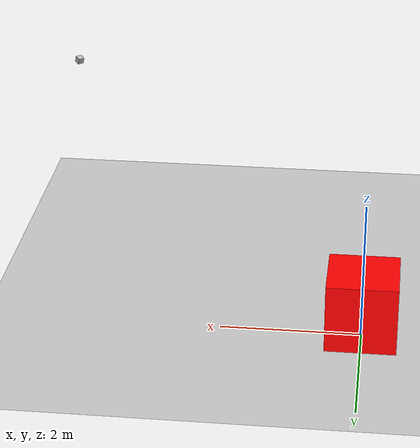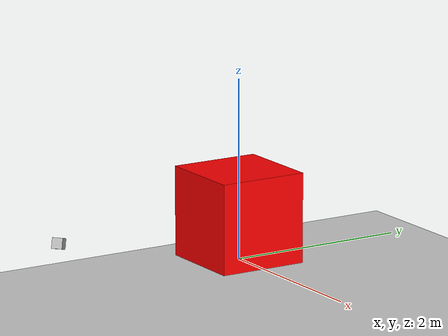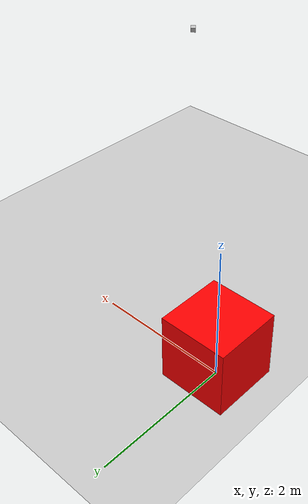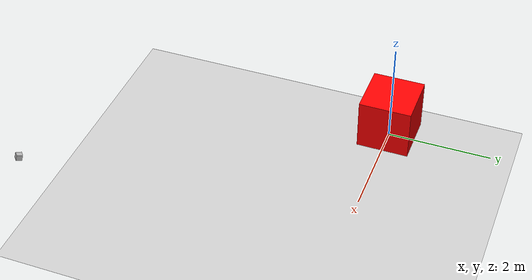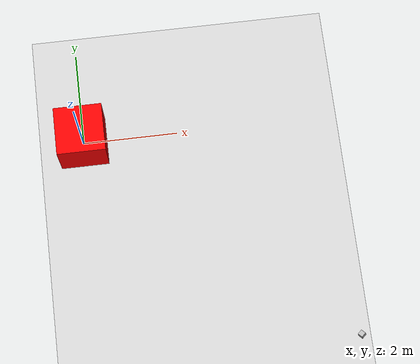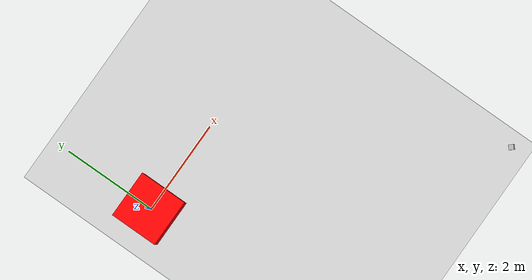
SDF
<?xml version="1.0" ?>
<sdf version="1.8">
  <world name="empty">
    <physics name="1ms" type="ignored">
      <max_step_size>0.001</max_step_size>
      <real_time_factor>1.0</real_time_factor>
    </physics>
    <plugin filename="gz-sim-physics-system"
        name="gz::sim::systems::Physics">
    </plugin>
    <plugin filename="gz-sim-user-commands-system"
        name="gz::sim::systems::UserCommands">
    </plugin>
    <plugin filename="gz-sim-scene-broadcaster-system"
        name="gz::sim::systems::SceneBroadcaster">
    </plugin>

    <light type="directional" name="sun">
      <cast_shadows>true</cast_shadows>
      <pose>0 0 10 0 0 0</pose>
      <diffuse>0.8 0.8 0.8 1</diffuse>
      <specular>0.2 0.2 0.2 1</specular>
      <attenuation>
        <range>1000</range>
        <constant>0.9</constant>
        <linear>0.01</linear>
        <quadratic>0.001</quadratic>
      </attenuation>
      <direction>-0.5 0.1 -0.9</direction>
    </light>

    <model name="ground_plane">
      <static>true</static>
      <link name="link">
        <collision name="collision">
          <geometry>
            <plane>
              <normal>0 0 1</normal>
              <size>100 100</size>
            </plane>
          </geometry>
        </collision>
        <visual name="visual">
          <geometry>
            <plane>
              <normal>0 0 1</normal>
              <size>100 100</size>
            </plane>
          </geometry>
          <material>
            <ambient>0.8 0.8 0.8 1</ambient>
            <diffuse>0.8 0.8 0.8 1</diffuse>
            <specular>0.8 0.8 0.8 1</specular>
          </material>
        </visual>
      </link>
    </model>

    <!-- Add a simple box to visualize -->
    <model name="box">
      <pose>0 0 0.5 0 0 0</pose>
      <link name="box_link">
        <inertial>
          <mass>1.0</mass>
          <inertia>
            <ixx>0.166666</ixx>
            <ixy>0</ixy>
            <ixz>0</ixz>
            <iyy>0.166666</iyy>
            <iyz>0</iyz>
            <izz>0.166666</izz>
          </inertia>
        </inertial>
        <collision name="box_collision">
          <geometry>
            <box>
              <size>1 1 1</size>
            </box>
          </geometry>
        </collision>
        <visual name="box_visual">
          <geometry>
            <box>
              <size>1 1 1</size>
            </box>
          </geometry>
          <material>
            <ambient>1 0 0 1</ambient>
            <diffuse>1 0 0 1</diffuse>
            <specular>1 0 0 1</specular>
          </material>
        </visual>
      </link>
    </model>

    <!-- Add a camera -->
    <model name="camera">
      <pose>5 -5 2 0 0.3 2.3</pose>
      <link name="link">
        <pose>0.05 0.05 0.05 0 0 0</pose>
        <inertial>
          <mass>0.1</mass>
          <inertia>
            <ixx>0.000166667</ixx>
            <iyy>0.000166667</iyy>
            <izz>0.000166667</izz>
          </inertia>
        </inertial>
        <collision name="collision">
          <geometry>
            <box>
              <size>0.1 0.1 0.1</size>
            </box>
          </geometry>
        </collision>
        <visual name="visual">
          <geometry>
            <box>
              <size>0.1 0.1 0.1</size>
            </box>
          </geometry>
        </visual>
        <sensor name="camera" type="camera">
            <camera>
                <horizontal_fov>1.047</horizontal_fov>
                <image>
                    <width>320</width>
                    <height>240</height>
                    <format>R8G8B8</format>
                </image>
                <clip>
                    <near>0.1</near>
                    <far>100</far>
                </clip>
            </camera>
            <always_on>1</always_on>
            <update_rate>10</update_rate>
            <visualize>true</visualize>
            <topic>camera</topic>
            <plugin filename="gz-sim-sensors-system" name="gz::sim::systems::Sensors">
                <render_engine>ogre2</render_engine>
            </plugin>
        </sensor>
      </link>
    </model>
  </world>
</sdf>
